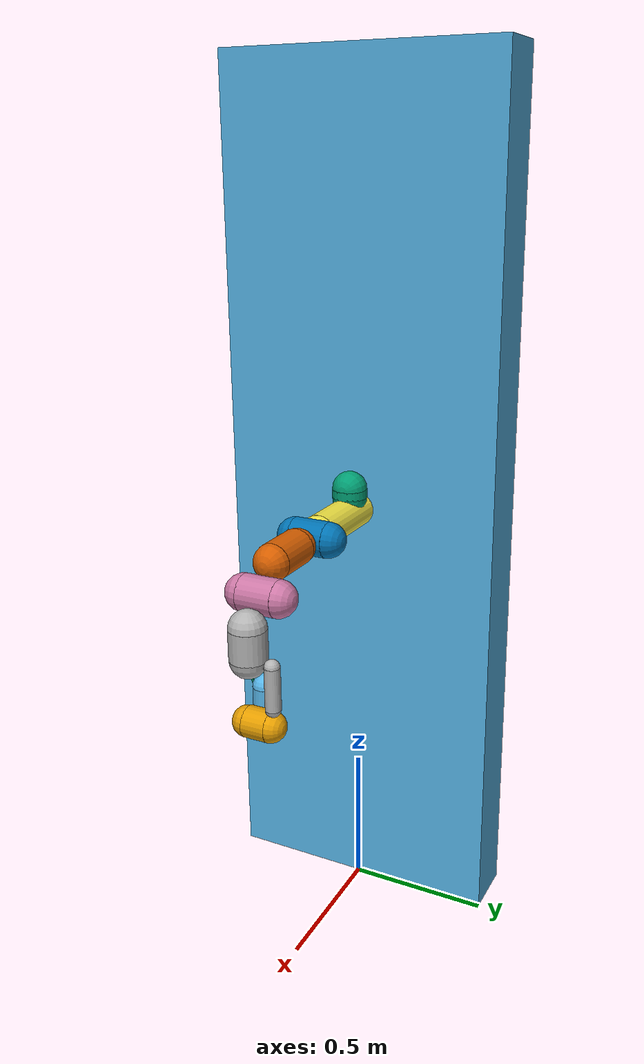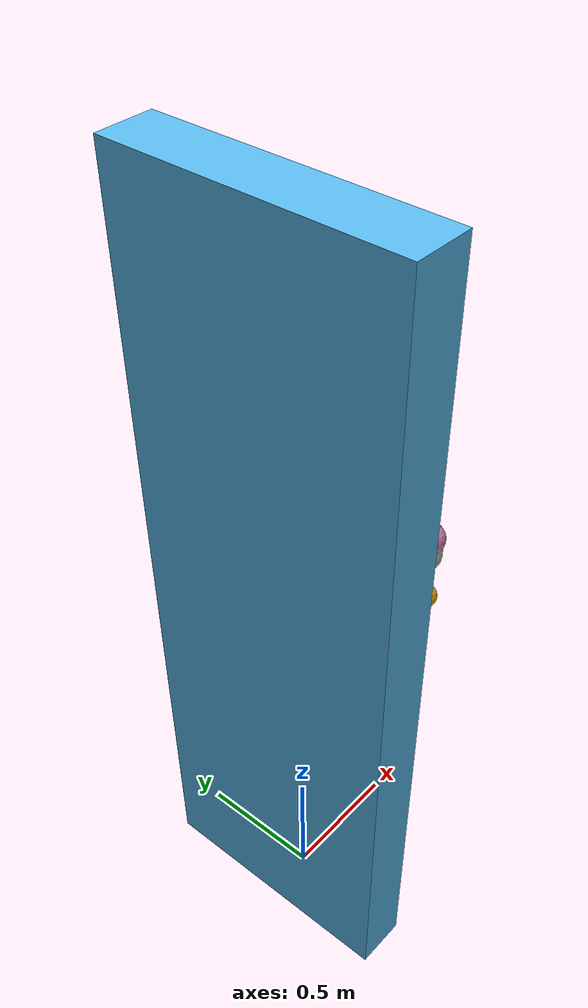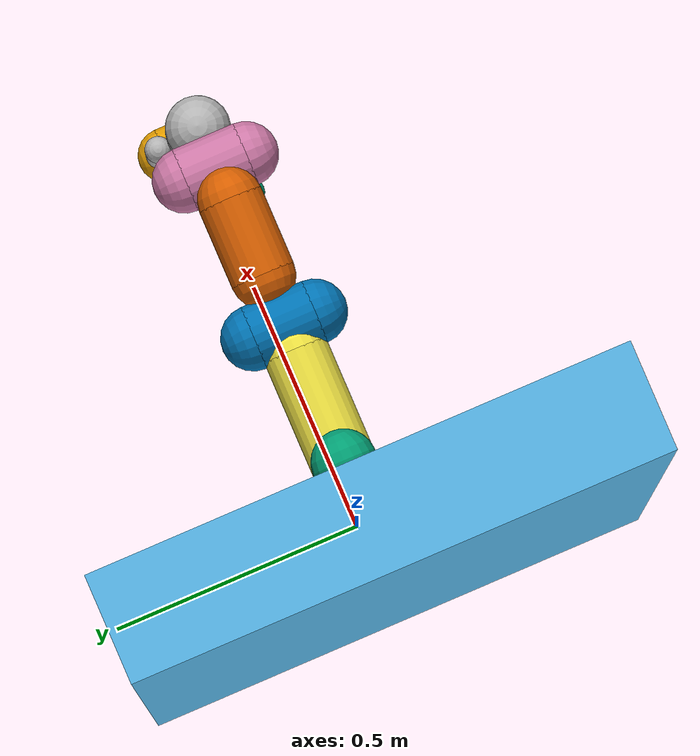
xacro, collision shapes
<?xml version="1.0" encoding="utf-8"?>
<robot xmlns:xacro="http://www.ros.org/wiki/xacro" name="panda">

  <xacro:include filename="$(find franka_description)/robots/panda_arm.xacro"/>

  <xacro:panda_arm arm_id="panda" xyz="0 0 1.5" rpy="0 1.5708 0" safety_distance="0" connected_to="wall"/>

</robot>

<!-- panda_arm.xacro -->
<robot xmlns:xacro="http://www.ros.org/wiki/xacro" name="panda">
  <!-- safety_distance: Minimum safety distance in [m] by which the collision volumes are expanded and which is enforced during robot motions -->
  <!-- arm_id: Namespace of the paree.nda arm. Serves to differentiate between arms in case of multiple instances. -->
  <xacro:macro name="panda_arm" params="arm_id:='panda' description_pkg:='franka_description' connected_to:='' xyz:='0 0 0' rpy:='0 0 0' safety_distance:=0">
    <xacro:property name="joint_damping" value="1.0"/>

    <link name="world" />

    <link name="wall">
      <visual>
        <origin xyz="-0.1 0 1.5" rpy="0 0 0"/>
        <geometry>
          <box size="0.2 1 3"/>
        </geometry>
      </visual>
      <collision>
        <origin xyz="-0.1 0 1.5" rpy="0 0 0"/>
        <geometry>
          <box size="0.2 1 3"/>
        </geometry>
      </collision>
    </link>

    <joint name="dummy_joint" type="fixed">
      <parent link="world" />
      <child link="wall" />
      <origin xyz="0.0 0.0 0.0" rpy="0.0 0.0 0.0" />
    </joint>

    <xacro:unless value="${not connected_to}">
      <joint name="${arm_id}_joint_${connected_to}" type="fixed">
        <parent link="${connected_to}"/>
        <child link="${arm_id}_link0"/>
        <origin rpy="${rpy}" xyz="${xyz}"/>
      </joint>
    </xacro:unless>

    <link name="${arm_id}_link0">
      <visual>
        <geometry>
          <mesh filename="package://${description_pkg}/meshes/visual/link0.dae"/>
        </geometry>
      </visual>
      <collision>
        <origin xyz="-0.075 0 0.06" rpy="0 ${pi/2} 0"/>
        <geometry>
          <cylinder radius="${0.06+safety_distance}" length="0.03" />
        </geometry>
      </collision>
      <collision>
        <origin xyz="-0.06 0 0.06" rpy="0 0 0"/>
        <geometry>
          <sphere radius="${0.06+safety_distance}" />
        </geometry>
      </collision>
      <collision>
        <origin xyz="-0.09 0 0.06" rpy="0 0 0"/>
        <geometry>
          <sphere radius="${0.06+safety_distance}" />
        </geometry>
      </collision>
      <inertial>
        <origin xyz="0 0 0" rpy="0 0 0" />
        <inertia ixx="0.3" ixy="0.0" ixz="0.0" iyy="0.3" iyz="0.0" izz="0.3" />
        <mass value="3.06" />
      </inertial>
    </link>

    <link name="${arm_id}_link1">
      <visual>
        <geometry>
          <mesh filename="package://${description_pkg}/meshes/visual/link1.dae"/>
        </geometry>
      </visual>
      <collision>
        <origin xyz="0 0 -0.1915" rpy="0 0 0"/>
        <geometry>
          <cylinder radius="${0.06+safety_distance}" length="0.2830" />
        </geometry>
      </collision>
      <collision>
        <origin xyz="0 0 -0.333" rpy="0 0 0"/>
        <geometry>
          <sphere radius="${0.06+safety_distance}" />
        </geometry>
      </collision>
      <collision>
        <origin xyz="0 0 -0.05" rpy="0 0 0"/>
        <geometry>
          <sphere radius="${0.06+safety_distance}" />
        </geometry>
      </collision>
      <inertial>
        <origin xyz="0.0039 0.0021 0" rpy="0 0 0" />
        <inertia ixx="0.703" ixy="-0.000139" ixz="0.00677" iyy="0.707" iyz="0.0192" izz="0.00912" />
        <mass value="4.97" />
      </inertial>
    </link>

    <joint name="${arm_id}_joint1" type="revolute">
      <safety_controller k_position="100.0" k_velocity="40.0" soft_lower_limit="-2.8973" soft_upper_limit="2.8973"/>
      <origin rpy="0 0 0" xyz="0 0 0.333"/>
      <dynamics damping="${joint_damping}"/>
      <parent link="${arm_id}_link0"/>
      <child link="${arm_id}_link1"/>
      <axis xyz="0 0 1"/>
      <limit effort="87" lower="-2.8973" upper="2.8973" velocity="2.1750"/>
    </joint>

    <link name="${arm_id}_link2">
      <visual>
        <geometry>
          <mesh filename="package://${description_pkg}/meshes/visual/link2.dae"/>
        </geometry>
      </visual>
      <collision>
        <origin xyz="0 0 0" rpy="0 0 0"/>
        <geometry>
          <cylinder radius="${0.06+safety_distance}" length="0.12" />
        </geometry>
      </collision>
      <collision>
        <origin xyz="0 0 -0.06" rpy="0 0 0"/>
        <geometry>
          <sphere radius="${0.06+safety_distance}" />
        </geometry>
      </collision>
      <collision>
        <origin xyz="0 0 0.06" rpy="0 0 0"/>
        <geometry>
          <sphere radius="${0.06+safety_distance}" />
        </geometry>
      </collision>
      <inertial>
        <origin xyz="-0.00314 -0.0287 0.0035" rpy="0 0 0" />
        <inertia ixx="0.00796" ixy="-0.00393" ixz="0.0103" iyy="0.0281" iyz="0.0007" izz="0.026" />
        <mass value="0.647" />
      </inertial>
    </link>

    <joint name="${arm_id}_joint2" type="revolute">
      <safety_controller k_position="100.0" k_velocity="40.0" soft_lower_limit="-1.7628" soft_upper_limit="1.7628"/>
      <origin rpy="${-pi/2} 0 0" xyz="0 0 0"/>
      <dynamics damping="${joint_damping}"/>
      <parent link="${arm_id}_link1"/>
      <child link="${arm_id}_link2"/>
      <axis xyz="0 0 1"/>
      <limit effort="87" lower="-1.7628" upper="1.7628" velocity="2.1750"/>
    </joint>

    <link name="${arm_id}_link3">
      <visual>
        <geometry>
          <mesh filename="package://${description_pkg}/meshes/visual/link3.dae"/>
        </geometry>
      </visual>
      <collision>
        <origin xyz="0 0 -0.145" rpy="0 0 0"/>
        <geometry>
          <cylinder radius="${0.06+safety_distance}" length="0.15" />
        </geometry>
      </collision>
      <collision>
        <origin xyz="0 0 -0.22" rpy="0 0 0"/>
        <geometry>
          <sphere radius="${0.06+safety_distance}" />
        </geometry>
      </collision>
      <collision>
        <origin xyz="0 0 -0.07" rpy="0 0 0"/>
        <geometry>
          <sphere radius="${0.06+safety_distance}" />
        </geometry>
      </collision>
      <inertial>
        <origin xyz="0.0275 0.0393 -0.0665" rpy="0 0 0" />
        <inertia ixx="0.0372" ixy="-0.00476" ixz="-0.0114" iyy="0.0362" iyz="-0.0128" izz="0.01083" />
        <mass value="3.23" />
      </inertial>
    </link>

    <joint name="${arm_id}_joint3" type="revolute">
      <safety_controller k_position="100.0" k_velocity="40.0" soft_lower_limit="-2.8973" soft_upper_limit="2.8973"/>
      <origin rpy="${pi/2} 0 0" xyz="0 -0.316 0"/>
      <dynamics damping="${joint_damping}"/>
      <parent link="${arm_id}_link2"/>
      <child link="${arm_id}_link3"/>
      <axis xyz="0 0 1"/>
      <limit effort="87" lower="-2.8973" upper="2.8973" velocity="2.1750"/>
    </joint>

    <link name="${arm_id}_link4">
      <visual>
        <geometry>
          <mesh filename="package://${description_pkg}/meshes/visual/link4.dae"/>
        </geometry>
      </visual>
      <collision>
        <origin xyz="0 0 0" rpy="0 0 0"/>
        <geometry>
          <cylinder radius="${0.06+safety_distance}" length="0.12" />
        </geometry>
      </collision>
      <collision>
        <origin xyz="0 0 0.06" rpy="0 0 0"/>
        <geometry>
          <sphere radius="${0.06+safety_distance}" />
        </geometry>
      </collision>
      <collision>
        <origin xyz="0 0 -0.06" rpy="0 0 0"/>
        <geometry>
          <sphere radius="${0.06+safety_distance}" />
        </geometry>
      </collision>
      <inertial>
        <origin xyz="-0.0532 0.1044 0.0275" rpy="0 0 0" />
        <inertia ixx="0.0259" ixy="0.0078" ixz="0.00133" iyy="0.01955" iyz="0.00864" izz="0.0283" />
        <mass value="3.59" />
      </inertial>
    </link>

    <joint name="${arm_id}_joint4" type="revolute">
      <safety_controller k_position="100.0" k_velocity="40.0" soft_lower_limit="-3.0718" soft_upper_limit="-0.0698"/>
      <origin rpy="${pi/2} 0 0" xyz="0.0825 0 0"/>
      <dynamics damping="${joint_damping}"/>
      <parent link="${arm_id}_link3"/>
      <child link="${arm_id}_link4"/>
      <axis xyz="0 0 1"/>
      <limit effort="87" lower="-3.0718" upper="-0.0698" velocity="2.1750"/>
    </joint>

    <link name="${arm_id}_link5">
      <visual>
        <geometry>
          <mesh filename="package://${description_pkg}/meshes/visual/link5.dae"/>
        </geometry>
      </visual>
      <collision>
        <origin xyz="0 0 -0.26" rpy="0 0 0"/>
        <geometry>
          <cylinder radius="${0.06+safety_distance}" length="0.1" />
        </geometry>
      </collision>
      <collision>
        <origin xyz="0 0 -0.31" rpy="0 0 0"/>
        <geometry>
          <sphere radius="${0.06+safety_distance}" />
        </geometry>
      </collision>
      <collision>
        <origin xyz="0 0 -0.21" rpy="0 0 0"/>
        <geometry>
          <sphere radius="${0.06+safety_distance}" />
        </geometry>
      </collision>
      <collision>
        <origin xyz="0 0.08 -0.13" rpy="0 0 0"/>
        <geometry>
          <cylinder radius="${0.025+safety_distance}" length="0.14" />
        </geometry>
      </collision>
      <collision>
        <origin xyz="0 0.08 -0.06" rpy="0 0 0"/>
        <geometry>
          <sphere radius="${0.025+safety_distance}" />
        </geometry>
      </collision>
      <collision>
        <origin xyz="0 0.08 -0.20" rpy="0 0 0"/>
        <geometry>
          <sphere radius="${0.025+safety_distance}" />
        </geometry>
      </collision>
      <inertial>
        <origin xyz="-0.012 0.0411 -0.0384" rpy="0 0 0" />
        <inertia ixx="0.0355" ixy="-0.00212" ixz="-0.004037" iyy="0.0295" iyz="0.000229" izz="0.00863" />
        <mass value="1.23" />
      </inertial>
    </link>

    <joint name="${arm_id}_joint5" type="revolute">
      <safety_controller k_position="100.0" k_velocity="40.0" soft_lower_limit="-2.8973" soft_upper_limit="2.8973"/>
      <origin rpy="${-pi/2} 0 0" xyz="-0.0825 0.384 0"/>
      <dynamics damping="${joint_damping}"/>
      <parent link="${arm_id}_link4"/>
      <child link="${arm_id}_link5"/>
      <axis xyz="0 0 1"/>
      <limit effort="12" lower="-2.8973" upper="2.8973" velocity="2.6100"/>
    </joint>

    <link name="${arm_id}_link6">
      <visual>
        <geometry>
          <mesh filename="package://${description_pkg}/meshes/visual/link6.dae"/>
        </geometry>
      </visual>
      <collision>
        <origin xyz="0 0 -0.03" rpy="0 0 0"/>
        <geometry>
          <cylinder radius="${0.05+safety_distance}" length="0.08" />
        </geometry>
      </collision>
      <collision>
        <origin xyz="0 0 0.01" rpy="0 0 0"/>
        <geometry>
          <sphere radius="${0.05+safety_distance}" />
        </geometry>
      </collision>
      <collision>
        <origin xyz="0 0 -0.07" rpy="0 0 0"/>
        <geometry>
          <sphere radius="${0.05+safety_distance}" />
        </geometry>
      </collision>
      <inertial>
        <origin xyz="0.0602 -0.01412 -0.01052" rpy="0 0 0" />
        <inertia ixx="0.001964" ixy="0.000109" ixz="-0.001158" iyy="0.00435" iyz="0.000341" izz="0.00543" />
        <mass value="1.67" />
      </inertial>
    </link>

    <joint name="${arm_id}_joint6" type="revolute">
      <safety_controller k_position="100.0" k_velocity="40.0" soft_lower_limit="-0.0175" soft_upper_limit="3.7525"/>
      <origin rpy="${pi/2} 0 0" xyz="0 0 0"/>
      <dynamics damping="${joint_damping}"/>
      <parent link="${arm_id}_link5"/>
      <child link="${arm_id}_link6"/>
      <axis xyz="0 0 1"/>
      <limit effort="12" lower="-0.0175" upper="3.7525" velocity="2.6100"/>
    </joint>

    <link name="${arm_id}_link7">
      <visual>
        <geometry>
          <mesh filename="package://${description_pkg}/meshes/visual/link7.dae"/>
        </geometry>
      </visual>
      <collision>
        <origin xyz="0 0 0.01" rpy="0 0 0"/>
        <geometry>
          <cylinder radius="${0.04+safety_distance}" length="0.14" />
        </geometry>
      </collision>
      <collision>
        <origin xyz="0 0 0.08" rpy="0 0 0"/>
        <geometry>
          <sphere radius="${0.04+safety_distance}"  />
        </geometry>
      </collision>
      <collision>
        <origin xyz="0 0 -0.06" rpy="0 0 0"/>
        <geometry>
          <sphere radius="${0.04+safety_distance}"  />
        </geometry>
      </collision>
      <inertial>
        <origin xyz="0.01052 -0.00425 0.0616" rpy="0 0 0" />
        <inertia ixx="0.01252" ixy="-0.000428" ixz="-0.001196" iyy="0.01003" iyz="-0.000741" izz="0.00482" />
        <mass value="0.736" />
      </inertial>
    </link>

    <joint name="${arm_id}_joint7" type="revolute">
      <safety_controller k_position="100.0" k_velocity="40.0" soft_lower_limit="-2.8973" soft_upper_limit="2.8973"/>
      <origin rpy="${pi/2} 0 0" xyz="0.088 0 0"/>
      <dynamics damping="${joint_damping}"/>
      <parent link="${arm_id}_link6"/>
      <child link="${arm_id}_link7"/>
      <axis xyz="0 0 1"/>
      <limit effort="12" lower="-2.8973" upper="2.8973" velocity="2.6100"/>
    </joint>

    <link name="${arm_id}_link8">
      <collision>
        <origin xyz="0.0424 0.0424 -0.0250" rpy="${pi} ${pi/2} ${pi/2}"/>
        <geometry>
          <cylinder radius="${0.03+safety_distance}"  length="0.01" />
        </geometry>
      </collision>
      <collision>
        <origin xyz="0.0424 0.0424 -0.02" rpy="0 0 0"/>
        <geometry>
          <sphere radius="${0.03+safety_distance}"  />
        </geometry>
      </collision>
      <collision>
        <origin xyz="0.0424 0.0424 -0.03" rpy="0 0 0"/>
        <geometry>
          <sphere radius="${0.03+safety_distance}"  />
        </geometry>
      </collision>
      <inertial>
        <origin xyz="0 0 0" rpy="0 0 0" />
        <inertia ixx="0.3" ixy="0.0" ixz="0.0" iyy="0.3" iyz="0.0" izz="0.3" />
        <mass value="0.001" />
      </inertial>
    </link>

    <joint name="${arm_id}_joint8" type="fixed">
      <origin rpy="0 0 0" xyz="0 0 0.107"/>
      <parent link="${arm_id}_link7"/>
      <child link="${arm_id}_link8"/>
    </joint>

  </xacro:macro>

</robot>
